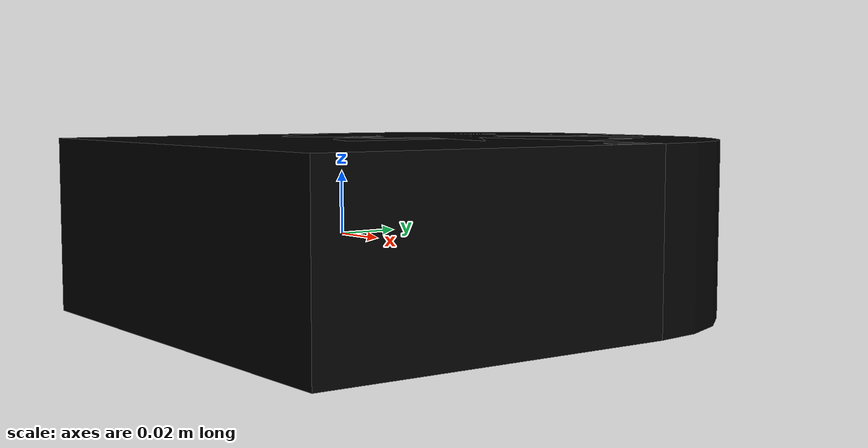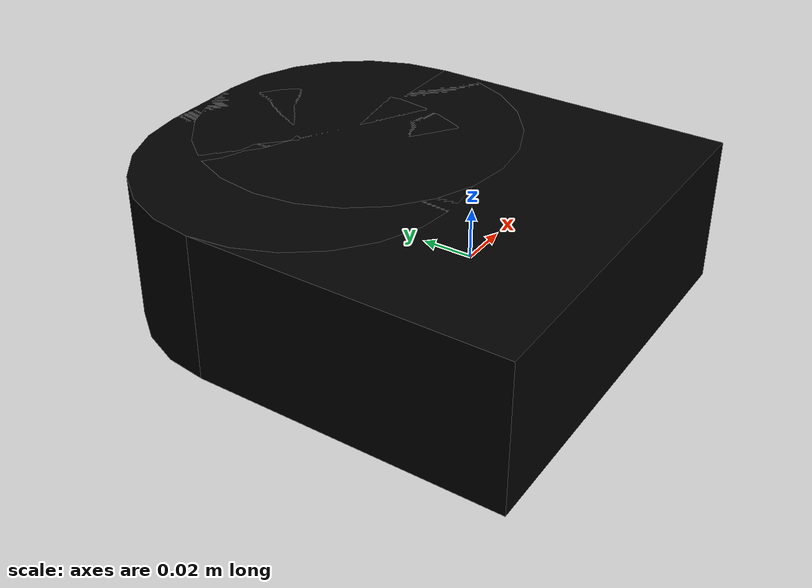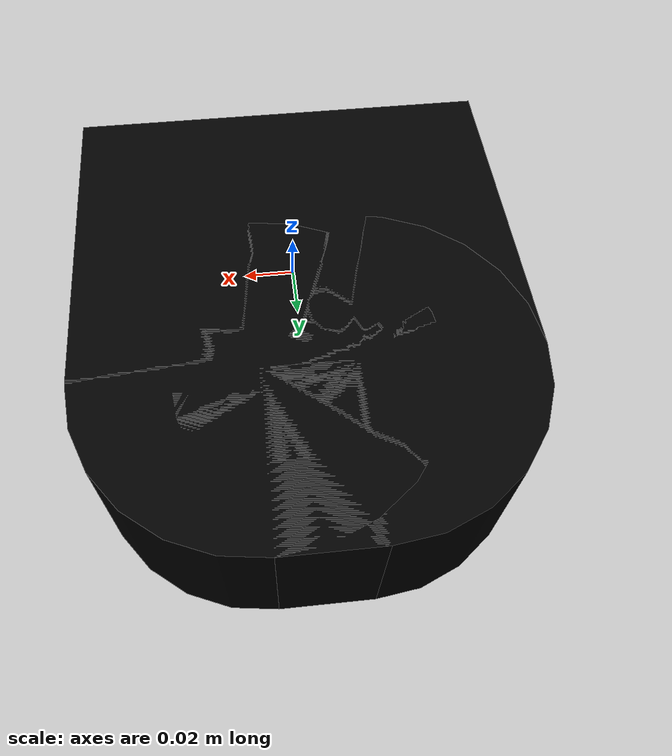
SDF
<?xml version="1.0" ?>
<sdf version="1.4">
    <model name="sandwich">
		<link name="link">
            <inertial>
                <mass>4</mass>
                <inertia>
                    <ixx>0.0103</ixx>
                    <ixy>0.0</ixy>
                    <ixz>0.0</ixz>
                    <iyy>0.0156</iyy>
                    <iyz>0.0</iyz>
                    <izz>0.0077</izz>
                </inertia>
            </inertial>
			<visual name="cylinder1">
				<pose>0.0175 0.0625 0 0 0 0</pose>
				<geometry>
					<cylinder>
						<radius>0.065</radius>
						<length>0.06</length>
					</cylinder>
				</geometry>
				<material>
					<diffuse>0.0 0.0 0.0 1.0</diffuse>
				</material>
			</visual>
			<visual name="cylinder2">
				<pose>-0.0175 0.0625 0 0 0 0</pose>
				<geometry>
					<cylinder>
						<radius>0.065</radius>
						<length>0.06</length>
					</cylinder>
				</geometry>
				<material>
					<diffuse>0.0 0.0 0.0 1.0</diffuse>
				</material>
			</visual>
			<visual name="box_center">
				<pose>0 0.095 0 0 0 0</pose>
				<geometry>
                    <box>
                        <size>0.035 0.065 0.06</size>
                    </box>
				</geometry>
				<material>
					<diffuse>0.0 0.0 0.0 1.0</diffuse>
				</material>
			</visual>
			<visual name="box_big">
				<pose>0 0 0 0 0 0</pose>
				<geometry>
                    <box>
                        <size>0.165 0.125 0.06</size>
                    </box>
				</geometry>
				<material>
					<diffuse>0.0 0.0 0.0 1.0</diffuse>
				</material>
			</visual>

			<collision name="cylinder1">
				<pose>0.0175 0.0625 0 0 0 0</pose>
				<geometry>
					<cylinder>
						<radius>0.065</radius>
						<length>0.06</length>
					</cylinder>
				</geometry>
			</collision>
			<collision name="cylinder2">
				<pose>-0.0175 0.0625 0 0 0 0</pose>
				<geometry>
					<cylinder>
						<radius>0.065</radius>
						<length>0.06</length>
					</cylinder>
				</geometry>
			</collision>
			<collision name="box_center">
				<pose>0 0.095 0 0 0 0</pose>
				<geometry>
                    <box>
                        <size>0.035 0.065 0.06</size>
                    </box>
				</geometry>
			</collision>
			<collision name="box_big">
				<pose>0 0 0 0 0 0</pose>
				<geometry>
                    <box>
                        <size>0.165 0.125 0.06</size>
                    </box>
				</geometry>
			</collision>
		</link>
	</model>
</sdf>
